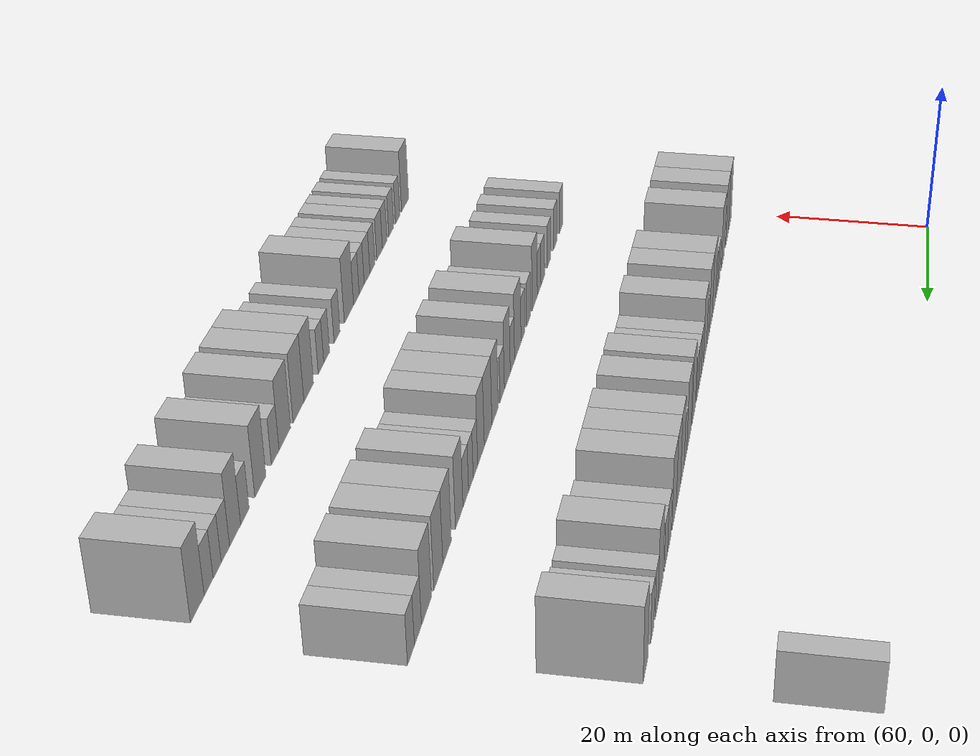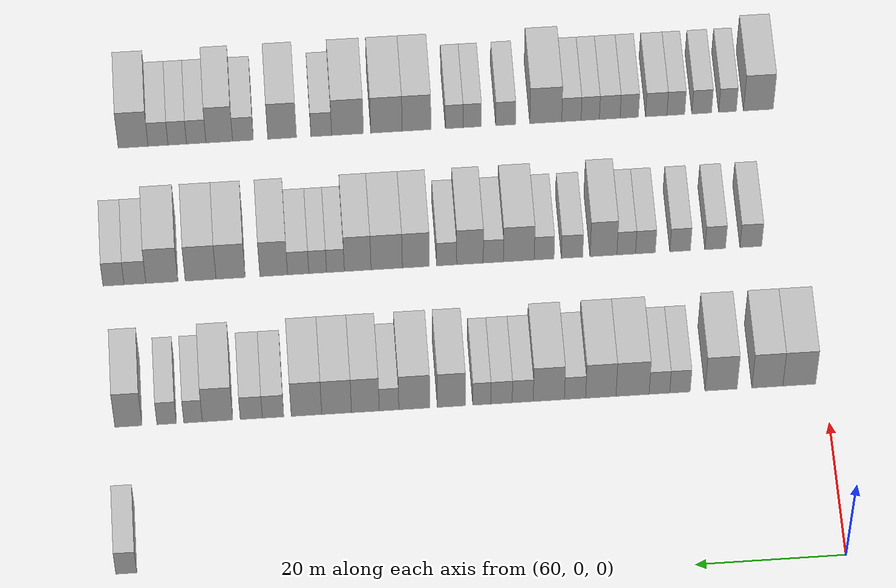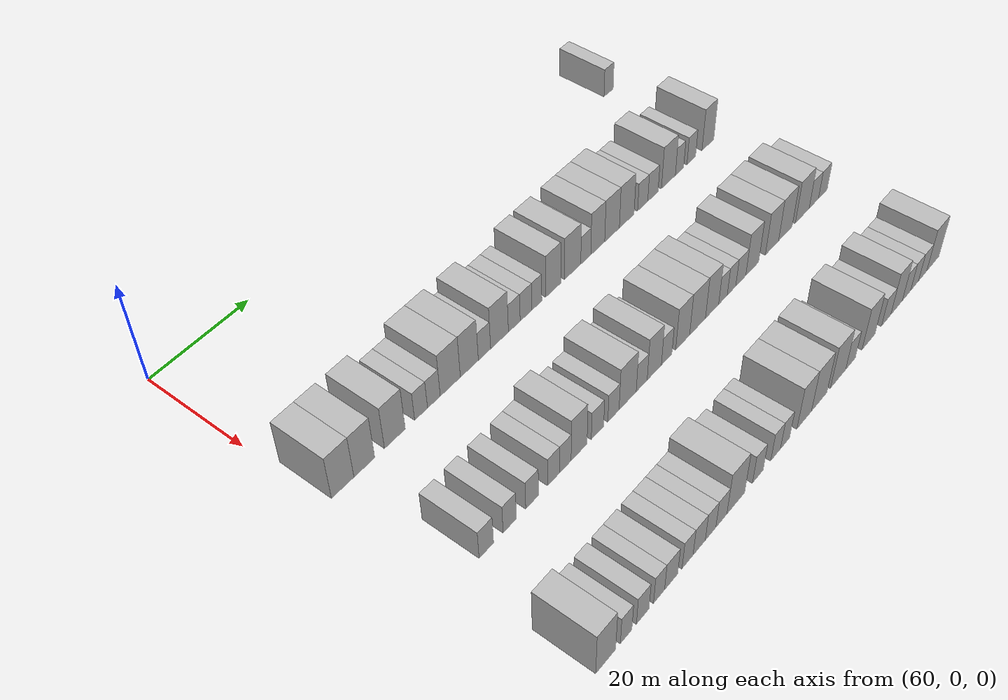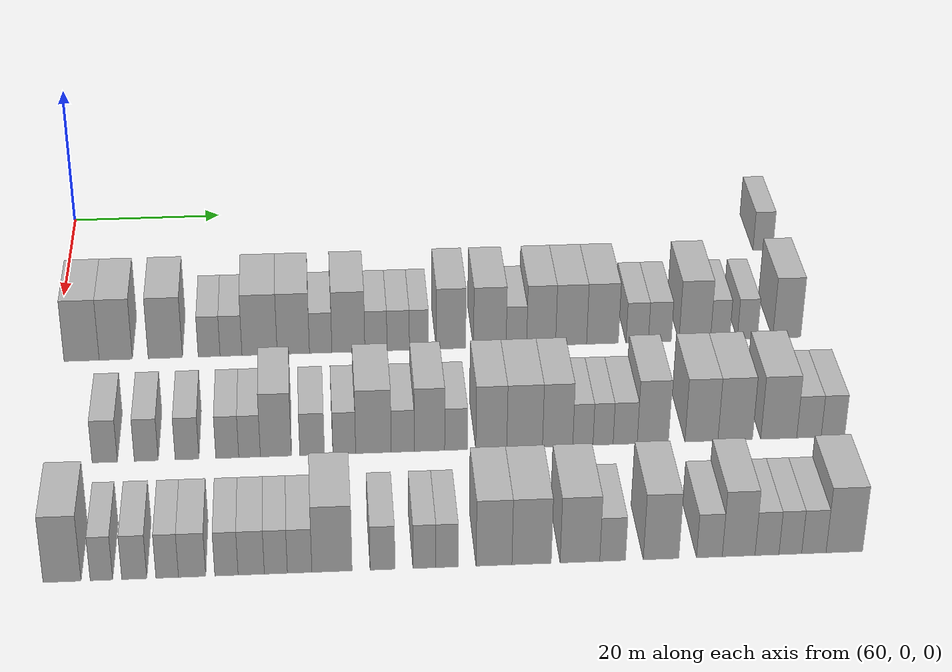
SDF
<sdf version="1.6">
 <world name="default">
  <model name="building_509">
   <static>1</static>
   <pose>69.0000 94.8407 0 0.000000 0.000000 0.000000</pose>
   <link name="link">
    <pose>0 0 3.00 0 0 0</pose>
    <collision name="collision"><geometry><box><size>10.0000 2.7574 6.0000</size></box></geometry></collision>
    <visual name="visual">
     <cast_shadows>0</cast_shadows>
     <geometry><box><size>10.0000 2.7574 6.0000</size></box></geometry>
     <material>
      <script>
       <uri>model://HANNAS_wall/materials/scripts</uri>
       <uri>model://HANNAS_wall/materials/textures</uri>
       <name>vrc/HANNAS_wall</name>
      </script>
     </material>
    </visual>
   </link>
  </model>
  <model name="building_683">
   <static>1</static>
   <pose>91.0000 3.4763 0 0.000000 0.000000 0.000000</pose>
   <link name="link">
    <pose>0 0 4.50 0 0 0</pose>
    <collision name="collision"><geometry><box><size>10.0000 4.4319 9.0000</size></box></geometry></collision>
    <visual name="visual">
     <cast_shadows>0</cast_shadows>
     <geometry><box><size>10.0000 4.4319 9.0000</size></box></geometry>
     <material>
      <script>
       <uri>model://HANNAS_wall/materials/scripts</uri>
       <uri>model://HANNAS_wall/materials/textures</uri>
       <name>vrc/HANNAS_wall</name>
      </script>
     </material>
    </visual>
   </link>
  </model>
  <model name="building_684">
   <static>1</static>
   <pose>91.0000 7.7859 0 0.000000 0.000000 0.000000</pose>
   <link name="link">
    <pose>0 0 4.50 0 0 0</pose>
    <collision name="collision"><geometry><box><size>10.0000 4.1874 9.0000</size></box></geometry></collision>
    <visual name="visual">
     <cast_shadows>0</cast_shadows>
     <geometry><box><size>10.0000 4.1874 9.0000</size></box></geometry>
     <material>
      <script>
       <uri>model://HANNAS_wall/materials/scripts</uri>
       <uri>model://HANNAS_wall/materials/textures</uri>
       <name>vrc/HANNAS_wall</name>
      </script>
     </material>
    </visual>
   </link>
  </model>
  <model name="building_685">
   <static>1</static>
   <pose>91.0000 14.0486 0 0.000000 0.000000 0.000000</pose>
   <link name="link">
    <pose>0 0 4.50 0 0 0</pose>
    <collision name="collision"><geometry><box><size>10.0000 4.3379 9.0000</size></box></geometry></collision>
    <visual name="visual">
     <cast_shadows>0</cast_shadows>
     <geometry><box><size>10.0000 4.3379 9.0000</size></box></geometry>
     <material>
      <script>
       <uri>model://HANNAS_wall/materials/scripts</uri>
       <uri>model://HANNAS_wall/materials/textures</uri>
       <name>vrc/HANNAS_wall</name>
      </script>
     </material>
    </visual>
   </link>
  </model>
  <model name="building_686">
   <static>1</static>
   <pose>91.0000 19.6030 0 0.000000 0.000000 0.000000</pose>
   <link name="link">
    <pose>0 0 3.00 0 0 0</pose>
    <collision name="collision"><geometry><box><size>10.0000 2.7709 6.0000</size></box></geometry></collision>
    <visual name="visual">
     <cast_shadows>0</cast_shadows>
     <geometry><box><size>10.0000 2.7709 6.0000</size></box></geometry>
     <material>
      <script>
       <uri>model://HANNAS_wall/materials/scripts</uri>
       <uri>model://HANNAS_wall/materials/textures</uri>
       <name>vrc/HANNAS_wall</name>
      </script>
     </material>
    </visual>
   </link>
  </model>
  <model name="building_687">
   <static>1</static>
   <pose>91.0000 22.3788 0 0.000000 0.000000 0.000000</pose>
   <link name="link">
    <pose>0 0 3.00 0 0 0</pose>
    <collision name="collision"><geometry><box><size>10.0000 2.7807 6.0000</size></box></geometry></collision>
    <visual name="visual">
     <cast_shadows>0</cast_shadows>
     <geometry><box><size>10.0000 2.7807 6.0000</size></box></geometry>
     <material>
      <script>
       <uri>model://HANNAS_wall/materials/scripts</uri>
       <uri>model://HANNAS_wall/materials/textures</uri>
       <name>vrc/HANNAS_wall</name>
      </script>
     </material>
    </visual>
   </link>
  </model>
  <model name="building_688">
   <static>1</static>
   <pose>91.0000 26.0052 0 0.000000 0.000000 0.000000</pose>
   <link name="link">
    <pose>0 0 4.50 0 0 0</pose>
    <collision name="collision"><geometry><box><size>10.0000 4.4722 9.0000</size></box></geometry></collision>
    <visual name="visual">
     <cast_shadows>0</cast_shadows>
     <geometry><box><size>10.0000 4.4722 9.0000</size></box></geometry>
     <material>
      <script>
       <uri>model://HANNAS_wall/materials/scripts</uri>
       <uri>model://HANNAS_wall/materials/textures</uri>
       <name>vrc/HANNAS_wall</name>
      </script>
     </material>
    </visual>
   </link>
  </model>
  <model name="building_689">
   <static>1</static>
   <pose>91.0000 30.2946 0 0.000000 0.000000 0.000000</pose>
   <link name="link">
    <pose>0 0 4.50 0 0 0</pose>
    <collision name="collision"><geometry><box><size>10.0000 4.1064 9.0000</size></box></geometry></collision>
    <visual name="visual">
     <cast_shadows>0</cast_shadows>
     <geometry><box><size>10.0000 4.1064 9.0000</size></box></geometry>
     <material>
      <script>
       <uri>model://HANNAS_wall/materials/scripts</uri>
       <uri>model://HANNAS_wall/materials/textures</uri>
       <name>vrc/HANNAS_wall</name>
      </script>
     </material>
    </visual>
   </link>
  </model>
  <model name="building_690">
   <static>1</static>
   <pose>91.0000 33.7784 0 0.000000 0.000000 0.000000</pose>
   <link name="link">
    <pose>0 0 3.00 0 0 0</pose>
    <collision name="collision"><geometry><box><size>10.0000 2.8613 6.0000</size></box></geometry></collision>
    <visual name="visual">
     <cast_shadows>0</cast_shadows>
     <geometry><box><size>10.0000 2.8613 6.0000</size></box></geometry>
     <material>
      <script>
       <uri>model://HANNAS_wall/materials/scripts</uri>
       <uri>model://HANNAS_wall/materials/textures</uri>
       <name>vrc/HANNAS_wall</name>
      </script>
     </material>
    </visual>
   </link>
  </model>
  <model name="building_691">
   <static>1</static>
   <pose>91.0000 37.3108 0 0.000000 0.000000 0.000000</pose>
   <link name="link">
    <pose>0 0 4.50 0 0 0</pose>
    <collision name="collision"><geometry><box><size>10.0000 4.2035 9.0000</size></box></geometry></collision>
    <visual name="visual">
     <cast_shadows>0</cast_shadows>
     <geometry><box><size>10.0000 4.2035 9.0000</size></box></geometry>
     <material>
      <script>
       <uri>model://HANNAS_wall/materials/scripts</uri>
       <uri>model://HANNAS_wall/materials/textures</uri>
       <name>vrc/HANNAS_wall</name>
      </script>
     </material>
    </visual>
   </link>
  </model>
  <model name="building_692">
   <static>1</static>
   <pose>91.0000 40.8255 0 0.000000 0.000000 0.000000</pose>
   <link name="link">
    <pose>0 0 3.00 0 0 0</pose>
    <collision name="collision"><geometry><box><size>10.0000 2.8258 6.0000</size></box></geometry></collision>
    <visual name="visual">
     <cast_shadows>0</cast_shadows>
     <geometry><box><size>10.0000 2.8258 6.0000</size></box></geometry>
     <material>
      <script>
       <uri>model://HANNAS_wall/materials/scripts</uri>
       <uri>model://HANNAS_wall/materials/textures</uri>
       <name>vrc/HANNAS_wall</name>
      </script>
     </material>
    </visual>
   </link>
  </model>
  <model name="building_693">
   <static>1</static>
   <pose>91.0000 43.6723 0 0.000000 0.000000 0.000000</pose>
   <link name="link">
    <pose>0 0 3.00 0 0 0</pose>
    <collision name="collision"><geometry><box><size>10.0000 2.8679 6.0000</size></box></geometry></collision>
    <visual name="visual">
     <cast_shadows>0</cast_shadows>
     <geometry><box><size>10.0000 2.8679 6.0000</size></box></geometry>
     <material>
      <script>
       <uri>model://HANNAS_wall/materials/scripts</uri>
       <uri>model://HANNAS_wall/materials/textures</uri>
       <name>vrc/HANNAS_wall</name>
      </script>
     </material>
    </visual>
   </link>
  </model>
  <model name="building_694">
   <static>1</static>
   <pose>91.0000 46.3287 0 0.000000 0.000000 0.000000</pose>
   <link name="link">
    <pose>0 0 3.00 0 0 0</pose>
    <collision name="collision"><geometry><box><size>10.0000 2.4450 6.0000</size></box></geometry></collision>
    <visual name="visual">
     <cast_shadows>0</cast_shadows>
     <geometry><box><size>10.0000 2.4450 6.0000</size></box></geometry>
     <material>
      <script>
       <uri>model://HANNAS_wall/materials/scripts</uri>
       <uri>model://HANNAS_wall/materials/textures</uri>
       <name>vrc/HANNAS_wall</name>
      </script>
     </material>
    </visual>
   </link>
  </model>
  <model name="building_695">
   <static>1</static>
   <pose>91.0000 50.4360 0 0.000000 0.000000 0.000000</pose>
   <link name="link">
    <pose>0 0 4.50 0 0 0</pose>
    <collision name="collision"><geometry><box><size>10.0000 3.7696 9.0000</size></box></geometry></collision>
    <visual name="visual">
     <cast_shadows>0</cast_shadows>
     <geometry><box><size>10.0000 3.7696 9.0000</size></box></geometry>
     <material>
      <script>
       <uri>model://HANNAS_wall/materials/scripts</uri>
       <uri>model://HANNAS_wall/materials/textures</uri>
       <name>vrc/HANNAS_wall</name>
      </script>
     </material>
    </visual>
   </link>
  </model>
  <model name="building_696">
   <static>1</static>
   <pose>91.0000 55.4137 0 0.000000 0.000000 0.000000</pose>
   <link name="link">
    <pose>0 0 4.50 0 0 0</pose>
    <collision name="collision"><geometry><box><size>10.0000 4.1859 9.0000</size></box></geometry></collision>
    <visual name="visual">
     <cast_shadows>0</cast_shadows>
     <geometry><box><size>10.0000 4.1859 9.0000</size></box></geometry>
     <material>
      <script>
       <uri>model://HANNAS_wall/materials/scripts</uri>
       <uri>model://HANNAS_wall/materials/textures</uri>
       <name>vrc/HANNAS_wall</name>
      </script>
     </material>
    </visual>
   </link>
  </model>
  <model name="building_697">
   <static>1</static>
   <pose>91.0000 58.8268 0 0.000000 0.000000 0.000000</pose>
   <link name="link">
    <pose>0 0 3.00 0 0 0</pose>
    <collision name="collision"><geometry><box><size>10.0000 2.6402 6.0000</size></box></geometry></collision>
    <visual name="visual">
     <cast_shadows>0</cast_shadows>
     <geometry><box><size>10.0000 2.6402 6.0000</size></box></geometry>
     <material>
      <script>
       <uri>model://HANNAS_wall/materials/scripts</uri>
       <uri>model://HANNAS_wall/materials/textures</uri>
       <name>vrc/HANNAS_wall</name>
      </script>
     </material>
    </visual>
   </link>
  </model>
  <model name="building_698">
   <static>1</static>
   <pose>91.0000 62.0101 0 0.000000 0.000000 0.000000</pose>
   <link name="link">
    <pose>0 0 4.50 0 0 0</pose>
    <collision name="collision"><geometry><box><size>10.0000 3.7266 9.0000</size></box></geometry></collision>
    <visual name="visual">
     <cast_shadows>0</cast_shadows>
     <geometry><box><size>10.0000 3.7266 9.0000</size></box></geometry>
     <material>
      <script>
       <uri>model://HANNAS_wall/materials/scripts</uri>
       <uri>model://HANNAS_wall/materials/textures</uri>
       <name>vrc/HANNAS_wall</name>
      </script>
     </material>
    </visual>
   </link>
  </model>
  <model name="building_699">
   <static>1</static>
   <pose>91.0000 65.8747 0 0.000000 0.000000 0.000000</pose>
   <link name="link">
    <pose>0 0 4.50 0 0 0</pose>
    <collision name="collision"><geometry><box><size>10.0000 4.0026 9.0000</size></box></geometry></collision>
    <visual name="visual">
     <cast_shadows>0</cast_shadows>
     <geometry><box><size>10.0000 4.0026 9.0000</size></box></geometry>
     <material>
      <script>
       <uri>model://HANNAS_wall/materials/scripts</uri>
       <uri>model://HANNAS_wall/materials/textures</uri>
       <name>vrc/HANNAS_wall</name>
      </script>
     </material>
    </visual>
   </link>
  </model>
  <model name="building_700">
   <static>1</static>
   <pose>91.0000 69.9228 0 0.000000 0.000000 0.000000</pose>
   <link name="link">
    <pose>0 0 4.50 0 0 0</pose>
    <collision name="collision"><geometry><box><size>10.0000 4.0937 9.0000</size></box></geometry></collision>
    <visual name="visual">
     <cast_shadows>0</cast_shadows>
     <geometry><box><size>10.0000 4.0937 9.0000</size></box></geometry>
     <material>
      <script>
       <uri>model://HANNAS_wall/materials/scripts</uri>
       <uri>model://HANNAS_wall/materials/textures</uri>
       <name>vrc/HANNAS_wall</name>
      </script>
     </material>
    </visual>
   </link>
  </model>
  <model name="building_701">
   <static>1</static>
   <pose>91.0000 74.4106 0 0.000000 0.000000 0.000000</pose>
   <link name="link">
    <pose>0 0 3.00 0 0 0</pose>
    <collision name="collision"><geometry><box><size>10.0000 2.8820 6.0000</size></box></geometry></collision>
    <visual name="visual">
     <cast_shadows>0</cast_shadows>
     <geometry><box><size>10.0000 2.8820 6.0000</size></box></geometry>
     <material>
      <script>
       <uri>model://HANNAS_wall/materials/scripts</uri>
       <uri>model://HANNAS_wall/materials/textures</uri>
       <name>vrc/HANNAS_wall</name>
      </script>
     </material>
    </visual>
   </link>
  </model>
  <model name="building_702">
   <static>1</static>
   <pose>91.0000 77.3339 0 0.000000 0.000000 0.000000</pose>
   <link name="link">
    <pose>0 0 3.00 0 0 0</pose>
    <collision name="collision"><geometry><box><size>10.0000 2.9646 6.0000</size></box></geometry></collision>
    <visual name="visual">
     <cast_shadows>0</cast_shadows>
     <geometry><box><size>10.0000 2.9646 6.0000</size></box></geometry>
     <material>
      <script>
       <uri>model://HANNAS_wall/materials/scripts</uri>
       <uri>model://HANNAS_wall/materials/textures</uri>
       <name>vrc/HANNAS_wall</name>
      </script>
     </material>
    </visual>
   </link>
  </model>
  <model name="building_703">
   <static>1</static>
   <pose>91.0000 81.8601 0 0.000000 0.000000 0.000000</pose>
   <link name="link">
    <pose>0 0 4.50 0 0 0</pose>
    <collision name="collision"><geometry><box><size>10.0000 4.0879 9.0000</size></box></geometry></collision>
    <visual name="visual">
     <cast_shadows>0</cast_shadows>
     <geometry><box><size>10.0000 4.0879 9.0000</size></box></geometry>
     <material>
      <script>
       <uri>model://HANNAS_wall/materials/scripts</uri>
       <uri>model://HANNAS_wall/materials/textures</uri>
       <name>vrc/HANNAS_wall</name>
      </script>
     </material>
    </visual>
   </link>
  </model>
  <model name="building_704">
   <static>1</static>
   <pose>91.0000 85.1435 0 0.000000 0.000000 0.000000</pose>
   <link name="link">
    <pose>0 0 3.00 0 0 0</pose>
    <collision name="collision"><geometry><box><size>10.0000 2.4789 6.0000</size></box></geometry></collision>
    <visual name="visual">
     <cast_shadows>0</cast_shadows>
     <geometry><box><size>10.0000 2.4789 6.0000</size></box></geometry>
     <material>
      <script>
       <uri>model://HANNAS_wall/materials/scripts</uri>
       <uri>model://HANNAS_wall/materials/textures</uri>
       <name>vrc/HANNAS_wall</name>
      </script>
     </material>
    </visual>
   </link>
  </model>
  <model name="building_705">
   <static>1</static>
   <pose>91.0000 88.6857 0 0.000000 0.000000 0.000000</pose>
   <link name="link">
    <pose>0 0 3.00 0 0 0</pose>
    <collision name="collision"><geometry><box><size>10.0000 2.6055 6.0000</size></box></geometry></collision>
    <visual name="visual">
     <cast_shadows>0</cast_shadows>
     <geometry><box><size>10.0000 2.6055 6.0000</size></box></geometry>
     <material>
      <script>
       <uri>model://HANNAS_wall/materials/scripts</uri>
       <uri>model://HANNAS_wall/materials/textures</uri>
       <name>vrc/HANNAS_wall</name>
      </script>
     </material>
    </visual>
   </link>
  </model>
  <model name="building_706">
   <static>1</static>
   <pose>91.0000 93.8079 0 0.000000 0.000000 0.000000</pose>
   <link name="link">
    <pose>0 0 4.50 0 0 0</pose>
    <collision name="collision"><geometry><box><size>10.0000 3.6389 9.0000</size></box></geometry></collision>
    <visual name="visual">
     <cast_shadows>0</cast_shadows>
     <geometry><box><size>10.0000 3.6389 9.0000</size></box></geometry>
     <material>
      <script>
       <uri>model://HANNAS_wall/materials/scripts</uri>
       <uri>model://HANNAS_wall/materials/textures</uri>
       <name>vrc/HANNAS_wall</name>
      </script>
     </material>
    </visual>
   </link>
  </model>
  <model name="building_888">
   <static>1</static>
   <pose>113.0000 7.8021 0 0.000000 0.000000 0.000000</pose>
   <link name="link">
    <pose>0 0 3.00 0 0 0</pose>
    <collision name="collision"><geometry><box><size>10.0000 2.9793 6.0000</size></box></geometry></collision>
    <visual name="visual">
     <cast_shadows>0</cast_shadows>
     <geometry><box><size>10.0000 2.9793 6.0000</size></box></geometry>
     <material>
      <script>
       <uri>model://HANNAS_wall/materials/scripts</uri>
       <uri>model://HANNAS_wall/materials/textures</uri>
       <name>vrc/HANNAS_wall</name>
      </script>
     </material>
    </visual>
   </link>
  </model>
  <model name="building_889">
   <static>1</static>
   <pose>113.0000 12.7052 0 0.000000 0.000000 0.000000</pose>
   <link name="link">
    <pose>0 0 3.00 0 0 0</pose>
    <collision name="collision"><geometry><box><size>10.0000 2.8270 6.0000</size></box></geometry></collision>
    <visual name="visual">
     <cast_shadows>0</cast_shadows>
     <geometry><box><size>10.0000 2.8270 6.0000</size></box></geometry>
     <material>
      <script>
       <uri>model://HANNAS_wall/materials/scripts</uri>
       <uri>model://HANNAS_wall/materials/textures</uri>
       <name>vrc/HANNAS_wall</name>
      </script>
     </material>
    </visual>
   </link>
  </model>
  <model name="building_890">
   <static>1</static>
   <pose>113.0000 17.5270 0 0.000000 0.000000 0.000000</pose>
   <link name="link">
    <pose>0 0 3.00 0 0 0</pose>
    <collision name="collision"><geometry><box><size>10.0000 2.8166 6.0000</size></box></geometry></collision>
    <visual name="visual">
     <cast_shadows>0</cast_shadows>
     <geometry><box><size>10.0000 2.8166 6.0000</size></box></geometry>
     <material>
      <script>
       <uri>model://HANNAS_wall/materials/scripts</uri>
       <uri>model://HANNAS_wall/materials/textures</uri>
       <name>vrc/HANNAS_wall</name>
      </script>
     </material>
    </visual>
   </link>
  </model>
  <model name="building_891">
   <static>1</static>
   <pose>113.0000 22.2931 0 0.000000 0.000000 0.000000</pose>
   <link name="link">
    <pose>0 0 3.00 0 0 0</pose>
    <collision name="collision"><geometry><box><size>10.0000 2.7155 6.0000</size></box></geometry></collision>
    <visual name="visual">
     <cast_shadows>0</cast_shadows>
     <geometry><box><size>10.0000 2.7155 6.0000</size></box></geometry>
     <material>
      <script>
       <uri>model://HANNAS_wall/materials/scripts</uri>
       <uri>model://HANNAS_wall/materials/textures</uri>
       <name>vrc/HANNAS_wall</name>
      </script>
     </material>
    </visual>
   </link>
  </model>
  <model name="building_892">
   <static>1</static>
   <pose>113.0000 24.9340 0 0.000000 0.000000 0.000000</pose>
   <link name="link">
    <pose>0 0 3.00 0 0 0</pose>
    <collision name="collision"><geometry><box><size>10.0000 2.5665 6.0000</size></box></geometry></collision>
    <visual name="visual">
     <cast_shadows>0</cast_shadows>
     <geometry><box><size>10.0000 2.5665 6.0000</size></box></geometry>
     <material>
      <script>
       <uri>model://HANNAS_wall/materials/scripts</uri>
       <uri>model://HANNAS_wall/materials/textures</uri>
       <name>vrc/HANNAS_wall</name>
      </script>
     </material>
    </visual>
   </link>
  </model>
  <model name="building_893">
   <static>1</static>
   <pose>113.0000 28.0636 0 0.000000 0.000000 0.000000</pose>
   <link name="link">
    <pose>0 0 4.50 0 0 0</pose>
    <collision name="collision"><geometry><box><size>10.0000 3.6927 9.0000</size></box></geometry></collision>
    <visual name="visual">
     <cast_shadows>0</cast_shadows>
     <geometry><box><size>10.0000 3.6927 9.0000</size></box></geometry>
     <material>
      <script>
       <uri>model://HANNAS_wall/materials/scripts</uri>
       <uri>model://HANNAS_wall/materials/textures</uri>
       <name>vrc/HANNAS_wall</name>
      </script>
     </material>
    </visual>
   </link>
  </model>
  <model name="building_894">
   <static>1</static>
   <pose>113.0000 32.3778 0 0.000000 0.000000 0.000000</pose>
   <link name="link">
    <pose>0 0 3.00 0 0 0</pose>
    <collision name="collision"><geometry><box><size>10.0000 2.9357 6.0000</size></box></geometry></collision>
    <visual name="visual">
     <cast_shadows>0</cast_shadows>
     <geometry><box><size>10.0000 2.9357 6.0000</size></box></geometry>
     <material>
      <script>
       <uri>model://HANNAS_wall/materials/scripts</uri>
       <uri>model://HANNAS_wall/materials/textures</uri>
       <name>vrc/HANNAS_wall</name>
      </script>
     </material>
    </visual>
   </link>
  </model>
  <model name="building_895">
   <static>1</static>
   <pose>113.0000 36.2002 0 0.000000 0.000000 0.000000</pose>
   <link name="link">
    <pose>0 0 3.00 0 0 0</pose>
    <collision name="collision"><geometry><box><size>10.0000 2.7089 6.0000</size></box></geometry></collision>
    <visual name="visual">
     <cast_shadows>0</cast_shadows>
     <geometry><box><size>10.0000 2.7089 6.0000</size></box></geometry>
     <material>
      <script>
       <uri>model://HANNAS_wall/materials/scripts</uri>
       <uri>model://HANNAS_wall/materials/textures</uri>
       <name>vrc/HANNAS_wall</name>
      </script>
     </material>
    </visual>
   </link>
  </model>
  <model name="building_896">
   <static>1</static>
   <pose>113.0000 39.6737 0 0.000000 0.000000 0.000000</pose>
   <link name="link">
    <pose>0 0 4.50 0 0 0</pose>
    <collision name="collision"><geometry><box><size>10.0000 4.2382 9.0000</size></box></geometry></collision>
    <visual name="visual">
     <cast_shadows>0</cast_shadows>
     <geometry><box><size>10.0000 4.2382 9.0000</size></box></geometry>
     <material>
      <script>
       <uri>model://HANNAS_wall/materials/scripts</uri>
       <uri>model://HANNAS_wall/materials/textures</uri>
       <name>vrc/HANNAS_wall</name>
      </script>
     </material>
    </visual>
   </link>
  </model>
  <model name="building_897">
   <static>1</static>
   <pose>113.0000 43.1726 0 0.000000 0.000000 0.000000</pose>
   <link name="link">
    <pose>0 0 3.00 0 0 0</pose>
    <collision name="collision"><geometry><box><size>10.0000 2.7597 6.0000</size></box></geometry></collision>
    <visual name="visual">
     <cast_shadows>0</cast_shadows>
     <geometry><box><size>10.0000 2.7597 6.0000</size></box></geometry>
     <material>
      <script>
       <uri>model://HANNAS_wall/materials/scripts</uri>
       <uri>model://HANNAS_wall/materials/textures</uri>
       <name>vrc/HANNAS_wall</name>
      </script>
     </material>
    </visual>
   </link>
  </model>
  <model name="building_898">
   <static>1</static>
   <pose>113.0000 46.3700 0 0.000000 0.000000 0.000000</pose>
   <link name="link">
    <pose>0 0 4.50 0 0 0</pose>
    <collision name="collision"><geometry><box><size>10.0000 3.6351 9.0000</size></box></geometry></collision>
    <visual name="visual">
     <cast_shadows>0</cast_shadows>
     <geometry><box><size>10.0000 3.6351 9.0000</size></box></geometry>
     <material>
      <script>
       <uri>model://HANNAS_wall/materials/scripts</uri>
       <uri>model://HANNAS_wall/materials/textures</uri>
       <name>vrc/HANNAS_wall</name>
      </script>
     </material>
    </visual>
   </link>
  </model>
  <model name="building_899">
   <static>1</static>
   <pose>113.0000 49.5577 0 0.000000 0.000000 0.000000</pose>
   <link name="link">
    <pose>0 0 3.00 0 0 0</pose>
    <collision name="collision"><geometry><box><size>10.0000 2.7403 6.0000</size></box></geometry></collision>
    <visual name="visual">
     <cast_shadows>0</cast_shadows>
     <geometry><box><size>10.0000 2.7403 6.0000</size></box></geometry>
     <material>
      <script>
       <uri>model://HANNAS_wall/materials/scripts</uri>
       <uri>model://HANNAS_wall/materials/textures</uri>
       <name>vrc/HANNAS_wall</name>
      </script>
     </material>
    </visual>
   </link>
  </model>
  <model name="building_900">
   <static>1</static>
   <pose>113.0000 53.7817 0 0.000000 0.000000 0.000000</pose>
   <link name="link">
    <pose>0 0 4.50 0 0 0</pose>
    <collision name="collision"><geometry><box><size>10.0000 3.7078 9.0000</size></box></geometry></collision>
    <visual name="visual">
     <cast_shadows>0</cast_shadows>
     <geometry><box><size>10.0000 3.7078 9.0000</size></box></geometry>
     <material>
      <script>
       <uri>model://HANNAS_wall/materials/scripts</uri>
       <uri>model://HANNAS_wall/materials/textures</uri>
       <name>vrc/HANNAS_wall</name>
      </script>
     </material>
    </visual>
   </link>
  </model>
  <model name="building_901">
   <static>1</static>
   <pose>113.0000 57.7824 0 0.000000 0.000000 0.000000</pose>
   <link name="link">
    <pose>0 0 4.50 0 0 0</pose>
    <collision name="collision"><geometry><box><size>10.0000 4.2935 9.0000</size></box></geometry></collision>
    <visual name="visual">
     <cast_shadows>0</cast_shadows>
     <geometry><box><size>10.0000 4.2935 9.0000</size></box></geometry>
     <material>
      <script>
       <uri>model://HANNAS_wall/materials/scripts</uri>
       <uri>model://HANNAS_wall/materials/textures</uri>
       <name>vrc/HANNAS_wall</name>
      </script>
     </material>
    </visual>
   </link>
  </model>
  <model name="building_902">
   <static>1</static>
   <pose>113.0000 61.7540 0 0.000000 0.000000 0.000000</pose>
   <link name="link">
    <pose>0 0 4.50 0 0 0</pose>
    <collision name="collision"><geometry><box><size>10.0000 3.6498 9.0000</size></box></geometry></collision>
    <visual name="visual">
     <cast_shadows>0</cast_shadows>
     <geometry><box><size>10.0000 3.6498 9.0000</size></box></geometry>
     <material>
      <script>
       <uri>model://HANNAS_wall/materials/scripts</uri>
       <uri>model://HANNAS_wall/materials/textures</uri>
       <name>vrc/HANNAS_wall</name>
      </script>
     </material>
    </visual>
   </link>
  </model>
  <model name="building_903">
   <static>1</static>
   <pose>113.0000 64.7961 0 0.000000 0.000000 0.000000</pose>
   <link name="link">
    <pose>0 0 3.00 0 0 0</pose>
    <collision name="collision"><geometry><box><size>10.0000 2.4343 6.0000</size></box></geometry></collision>
    <visual name="visual">
     <cast_shadows>0</cast_shadows>
     <geometry><box><size>10.0000 2.4343 6.0000</size></box></geometry>
     <material>
      <script>
       <uri>model://HANNAS_wall/materials/scripts</uri>
       <uri>model://HANNAS_wall/materials/textures</uri>
       <name>vrc/HANNAS_wall</name>
      </script>
     </material>
    </visual>
   </link>
  </model>
  <model name="building_904">
   <static>1</static>
   <pose>113.0000 67.2259 0 0.000000 0.000000 0.000000</pose>
   <link name="link">
    <pose>0 0 3.00 0 0 0</pose>
    <collision name="collision"><geometry><box><size>10.0000 2.4254 6.0000</size></box></geometry></collision>
    <visual name="visual">
     <cast_shadows>0</cast_shadows>
     <geometry><box><size>10.0000 2.4254 6.0000</size></box></geometry>
     <material>
      <script>
       <uri>model://HANNAS_wall/materials/scripts</uri>
       <uri>model://HANNAS_wall/materials/textures</uri>
       <name>vrc/HANNAS_wall</name>
      </script>
     </material>
    </visual>
   </link>
  </model>
  <model name="building_905">
   <static>1</static>
   <pose>113.0000 69.8925 0 0.000000 0.000000 0.000000</pose>
   <link name="link">
    <pose>0 0 3.00 0 0 0</pose>
    <collision name="collision"><geometry><box><size>10.0000 2.9077 6.0000</size></box></geometry></collision>
    <visual name="visual">
     <cast_shadows>0</cast_shadows>
     <geometry><box><size>10.0000 2.9077 6.0000</size></box></geometry>
     <material>
      <script>
       <uri>model://HANNAS_wall/materials/scripts</uri>
       <uri>model://HANNAS_wall/materials/textures</uri>
       <name>vrc/HANNAS_wall</name>
      </script>
     </material>
    </visual>
   </link>
  </model>
  <model name="building_906">
   <static>1</static>
   <pose>113.0000 73.2356 0 0.000000 0.000000 0.000000</pose>
   <link name="link">
    <pose>0 0 4.50 0 0 0</pose>
    <collision name="collision"><geometry><box><size>10.0000 3.7785 9.0000</size></box></geometry></collision>
    <visual name="visual">
     <cast_shadows>0</cast_shadows>
     <geometry><box><size>10.0000 3.7785 9.0000</size></box></geometry>
     <material>
      <script>
       <uri>model://HANNAS_wall/materials/scripts</uri>
       <uri>model://HANNAS_wall/materials/textures</uri>
       <name>vrc/HANNAS_wall</name>
      </script>
     </material>
    </visual>
   </link>
  </model>
  <model name="building_907">
   <static>1</static>
   <pose>113.0000 79.1216 0 0.000000 0.000000 0.000000</pose>
   <link name="link">
    <pose>0 0 4.50 0 0 0</pose>
    <collision name="collision"><geometry><box><size>10.0000 3.9934 9.0000</size></box></geometry></collision>
    <visual name="visual">
     <cast_shadows>0</cast_shadows>
     <geometry><box><size>10.0000 3.9934 9.0000</size></box></geometry>
     <material>
      <script>
       <uri>model://HANNAS_wall/materials/scripts</uri>
       <uri>model://HANNAS_wall/materials/textures</uri>
       <name>vrc/HANNAS_wall</name>
      </script>
     </material>
    </visual>
   </link>
  </model>
  <model name="building_908">
   <static>1</static>
   <pose>113.0000 83.2175 0 0.000000 0.000000 0.000000</pose>
   <link name="link">
    <pose>0 0 4.50 0 0 0</pose>
    <collision name="collision"><geometry><box><size>10.0000 4.1983 9.0000</size></box></geometry></collision>
    <visual name="visual">
     <cast_shadows>0</cast_shadows>
     <geometry><box><size>10.0000 4.1983 9.0000</size></box></geometry>
     <material>
      <script>
       <uri>model://HANNAS_wall/materials/scripts</uri>
       <uri>model://HANNAS_wall/materials/textures</uri>
       <name>vrc/HANNAS_wall</name>
      </script>
     </material>
    </visual>
   </link>
  </model>
  <model name="building_909">
   <static>1</static>
   <pose>113.0000 88.5026 0 0.000000 0.000000 0.000000</pose>
   <link name="link">
    <pose>0 0 4.50 0 0 0</pose>
    <collision name="collision"><geometry><box><size>10.0000 4.3719 9.0000</size></box></geometry></collision>
    <visual name="visual">
     <cast_shadows>0</cast_shadows>
     <geometry><box><size>10.0000 4.3719 9.0000</size></box></geometry>
     <material>
      <script>
       <uri>model://HANNAS_wall/materials/scripts</uri>
       <uri>model://HANNAS_wall/materials/textures</uri>
       <name>vrc/HANNAS_wall</name>
      </script>
     </material>
    </visual>
   </link>
  </model>
  <model name="building_910">
   <static>1</static>
   <pose>113.0000 92.1768 0 0.000000 0.000000 0.000000</pose>
   <link name="link">
    <pose>0 0 3.00 0 0 0</pose>
    <collision name="collision"><geometry><box><size>10.0000 2.9765 6.0000</size></box></geometry></collision>
    <visual name="visual">
     <cast_shadows>0</cast_shadows>
     <geometry><box><size>10.0000 2.9765 6.0000</size></box></geometry>
     <material>
      <script>
       <uri>model://HANNAS_wall/materials/scripts</uri>
       <uri>model://HANNAS_wall/materials/textures</uri>
       <name>vrc/HANNAS_wall</name>
      </script>
     </material>
    </visual>
   </link>
  </model>
  <model name="building_911">
   <static>1</static>
   <pose>113.0000 95.1010 0 0.000000 0.000000 0.000000</pose>
   <link name="link">
    <pose>0 0 3.00 0 0 0</pose>
    <collision name="collision"><geometry><box><size>10.0000 2.8721 6.0000</size></box></geometry></collision>
    <visual name="visual">
     <cast_shadows>0</cast_shadows>
     <geometry><box><size>10.0000 2.8721 6.0000</size></box></geometry>
     <material>
      <script>
       <uri>model://HANNAS_wall/materials/scripts</uri>
       <uri>model://HANNAS_wall/materials/textures</uri>
       <name>vrc/HANNAS_wall</name>
      </script>
     </material>
    </visual>
   </link>
  </model>
  <model name="building_1076">
   <static>1</static>
   <pose>135.0000 4.5302 0 0.000000 0.000000 0.000000</pose>
   <link name="link">
    <pose>0 0 4.50 0 0 0</pose>
    <collision name="collision"><geometry><box><size>10.0000 4.1595 9.0000</size></box></geometry></collision>
    <visual name="visual">
     <cast_shadows>0</cast_shadows>
     <geometry><box><size>10.0000 4.1595 9.0000</size></box></geometry>
     <material>
      <script>
       <uri>model://HANNAS_wall/materials/scripts</uri>
       <uri>model://HANNAS_wall/materials/textures</uri>
       <name>vrc/HANNAS_wall</name>
      </script>
     </material>
    </visual>
   </link>
  </model>
  <model name="building_1077">
   <static>1</static>
   <pose>135.0000 8.8443 0 0.000000 0.000000 0.000000</pose>
   <link name="link">
    <pose>0 0 3.00 0 0 0</pose>
    <collision name="collision"><geometry><box><size>10.0000 2.4687 6.0000</size></box></geometry></collision>
    <visual name="visual">
     <cast_shadows>0</cast_shadows>
     <geometry><box><size>10.0000 2.4687 6.0000</size></box></geometry>
     <material>
      <script>
       <uri>model://HANNAS_wall/materials/scripts</uri>
       <uri>model://HANNAS_wall/materials/textures</uri>
       <name>vrc/HANNAS_wall</name>
      </script>
     </material>
    </visual>
   </link>
  </model>
  <model name="building_1078">
   <static>1</static>
   <pose>135.0000 12.4537 0 0.000000 0.000000 0.000000</pose>
   <link name="link">
    <pose>0 0 3.00 0 0 0</pose>
    <collision name="collision"><geometry><box><size>10.0000 2.7501 6.0000</size></box></geometry></collision>
    <visual name="visual">
     <cast_shadows>0</cast_shadows>
     <geometry><box><size>10.0000 2.7501 6.0000</size></box></geometry>
     <material>
      <script>
       <uri>model://HANNAS_wall/materials/scripts</uri>
       <uri>model://HANNAS_wall/materials/textures</uri>
       <name>vrc/HANNAS_wall</name>
      </script>
     </material>
    </visual>
   </link>
  </model>
  <model name="building_1079">
   <static>1</static>
   <pose>135.0000 16.0682 0 0.000000 0.000000 0.000000</pose>
   <link name="link">
    <pose>0 0 3.00 0 0 0</pose>
    <collision name="collision"><geometry><box><size>10.0000 2.4788 6.0000</size></box></geometry></collision>
    <visual name="visual">
     <cast_shadows>0</cast_shadows>
     <geometry><box><size>10.0000 2.4788 6.0000</size></box></geometry>
     <material>
      <script>
       <uri>model://HANNAS_wall/materials/scripts</uri>
       <uri>model://HANNAS_wall/materials/textures</uri>
       <name>vrc/HANNAS_wall</name>
      </script>
     </material>
    </visual>
   </link>
  </model>
  <model name="building_1080">
   <static>1</static>
   <pose>135.0000 18.8057 0 0.000000 0.000000 0.000000</pose>
   <link name="link">
    <pose>0 0 3.00 0 0 0</pose>
    <collision name="collision"><geometry><box><size>10.0000 2.9961 6.0000</size></box></geometry></collision>
    <visual name="visual">
     <cast_shadows>0</cast_shadows>
     <geometry><box><size>10.0000 2.9961 6.0000</size></box></geometry>
     <material>
      <script>
       <uri>model://HANNAS_wall/materials/scripts</uri>
       <uri>model://HANNAS_wall/materials/textures</uri>
       <name>vrc/HANNAS_wall</name>
      </script>
     </material>
    </visual>
   </link>
  </model>
  <model name="building_1081">
   <static>1</static>
   <pose>135.0000 22.5877 0 0.000000 0.000000 0.000000</pose>
   <link name="link">
    <pose>0 0 3.00 0 0 0</pose>
    <collision name="collision"><geometry><box><size>10.0000 2.5678 6.0000</size></box></geometry></collision>
    <visual name="visual">
     <cast_shadows>0</cast_shadows>
     <geometry><box><size>10.0000 2.5678 6.0000</size></box></geometry>
     <material>
      <script>
       <uri>model://HANNAS_wall/materials/scripts</uri>
       <uri>model://HANNAS_wall/materials/textures</uri>
       <name>vrc/HANNAS_wall</name>
      </script>
     </material>
    </visual>
   </link>
  </model>
  <model name="building_1082">
   <static>1</static>
   <pose>135.0000 25.3209 0 0.000000 0.000000 0.000000</pose>
   <link name="link">
    <pose>0 0 3.00 0 0 0</pose>
    <collision name="collision"><geometry><box><size>10.0000 2.8986 6.0000</size></box></geometry></collision>
    <visual name="visual">
     <cast_shadows>0</cast_shadows>
     <geometry><box><size>10.0000 2.8986 6.0000</size></box></geometry>
     <material>
      <script>
       <uri>model://HANNAS_wall/materials/scripts</uri>
       <uri>model://HANNAS_wall/materials/textures</uri>
       <name>vrc/HANNAS_wall</name>
      </script>
     </material>
    </visual>
   </link>
  </model>
  <model name="building_1083">
   <static>1</static>
   <pose>135.0000 28.0424 0 0.000000 0.000000 0.000000</pose>
   <link name="link">
    <pose>0 0 3.00 0 0 0</pose>
    <collision name="collision"><geometry><box><size>10.0000 2.5445 6.0000</size></box></geometry></collision>
    <visual name="visual">
     <cast_shadows>0</cast_shadows>
     <geometry><box><size>10.0000 2.5445 6.0000</size></box></geometry>
     <material>
      <script>
       <uri>model://HANNAS_wall/materials/scripts</uri>
       <uri>model://HANNAS_wall/materials/textures</uri>
       <name>vrc/HANNAS_wall</name>
      </script>
     </material>
    </visual>
   </link>
  </model>
  <model name="building_1084">
   <static>1</static>
   <pose>135.0000 30.6707 0 0.000000 0.000000 0.000000</pose>
   <link name="link">
    <pose>0 0 3.00 0 0 0</pose>
    <collision name="collision"><geometry><box><size>10.0000 2.7120 6.0000</size></box></geometry></collision>
    <visual name="visual">
     <cast_shadows>0</cast_shadows>
     <geometry><box><size>10.0000 2.7120 6.0000</size></box></geometry>
     <material>
      <script>
       <uri>model://HANNAS_wall/materials/scripts</uri>
       <uri>model://HANNAS_wall/materials/textures</uri>
       <name>vrc/HANNAS_wall</name>
      </script>
     </material>
    </visual>
   </link>
  </model>
  <model name="building_1085">
   <static>1</static>
   <pose>135.0000 34.2503 0 0.000000 0.000000 0.000000</pose>
   <link name="link">
    <pose>0 0 4.50 0 0 0</pose>
    <collision name="collision"><geometry><box><size>10.0000 4.4473 9.0000</size></box></geometry></collision>
    <visual name="visual">
     <cast_shadows>0</cast_shadows>
     <geometry><box><size>10.0000 4.4473 9.0000</size></box></geometry>
     <material>
      <script>
       <uri>model://HANNAS_wall/materials/scripts</uri>
       <uri>model://HANNAS_wall/materials/textures</uri>
       <name>vrc/HANNAS_wall</name>
      </script>
     </material>
    </visual>
   </link>
  </model>
  <model name="building_1086">
   <static>1</static>
   <pose>135.0000 39.8517 0 0.000000 0.000000 0.000000</pose>
   <link name="link">
    <pose>0 0 3.00 0 0 0</pose>
    <collision name="collision"><geometry><box><size>10.0000 2.7554 6.0000</size></box></geometry></collision>
    <visual name="visual">
     <cast_shadows>0</cast_shadows>
     <geometry><box><size>10.0000 2.7554 6.0000</size></box></geometry>
     <material>
      <script>
       <uri>model://HANNAS_wall/materials/scripts</uri>
       <uri>model://HANNAS_wall/materials/textures</uri>
       <name>vrc/HANNAS_wall</name>
      </script>
     </material>
    </visual>
   </link>
  </model>
  <model name="building_1087">
   <static>1</static>
   <pose>135.0000 44.5064 0 0.000000 0.000000 0.000000</pose>
   <link name="link">
    <pose>0 0 3.00 0 0 0</pose>
    <collision name="collision"><geometry><box><size>10.0000 2.5542 6.0000</size></box></geometry></collision>
    <visual name="visual">
     <cast_shadows>0</cast_shadows>
     <geometry><box><size>10.0000 2.5542 6.0000</size></box></geometry>
     <material>
      <script>
       <uri>model://HANNAS_wall/materials/scripts</uri>
       <uri>model://HANNAS_wall/materials/textures</uri>
       <name>vrc/HANNAS_wall</name>
      </script>
     </material>
    </visual>
   </link>
  </model>
  <model name="building_1088">
   <static>1</static>
   <pose>135.0000 47.0196 0 0.000000 0.000000 0.000000</pose>
   <link name="link">
    <pose>0 0 3.00 0 0 0</pose>
    <collision name="collision"><geometry><box><size>10.0000 2.4721 6.0000</size></box></geometry></collision>
    <visual name="visual">
     <cast_shadows>0</cast_shadows>
     <geometry><box><size>10.0000 2.4721 6.0000</size></box></geometry>
     <material>
      <script>
       <uri>model://HANNAS_wall/materials/scripts</uri>
       <uri>model://HANNAS_wall/materials/textures</uri>
       <name>vrc/HANNAS_wall</name>
      </script>
     </material>
    </visual>
   </link>
  </model>
  <model name="building_1089">
   <static>1</static>
   <pose>135.0000 52.2580 0 0.000000 0.000000 0.000000</pose>
   <link name="link">
    <pose>0 0 4.50 0 0 0</pose>
    <collision name="collision"><geometry><box><size>10.0000 4.0048 9.0000</size></box></geometry></collision>
    <visual name="visual">
     <cast_shadows>0</cast_shadows>
     <geometry><box><size>10.0000 4.0048 9.0000</size></box></geometry>
     <material>
      <script>
       <uri>model://HANNAS_wall/materials/scripts</uri>
       <uri>model://HANNAS_wall/materials/textures</uri>
       <name>vrc/HANNAS_wall</name>
      </script>
     </material>
    </visual>
   </link>
  </model>
  <model name="building_1090">
   <static>1</static>
   <pose>135.0000 56.4539 0 0.000000 0.000000 0.000000</pose>
   <link name="link">
    <pose>0 0 4.50 0 0 0</pose>
    <collision name="collision"><geometry><box><size>10.0000 4.3869 9.0000</size></box></geometry></collision>
    <visual name="visual">
     <cast_shadows>0</cast_shadows>
     <geometry><box><size>10.0000 4.3869 9.0000</size></box></geometry>
     <material>
      <script>
       <uri>model://HANNAS_wall/materials/scripts</uri>
       <uri>model://HANNAS_wall/materials/textures</uri>
       <name>vrc/HANNAS_wall</name>
      </script>
     </material>
    </visual>
   </link>
  </model>
  <model name="building_1091">
   <static>1</static>
   <pose>135.0000 61.8669 0 0.000000 0.000000 0.000000</pose>
   <link name="link">
    <pose>0 0 4.50 0 0 0</pose>
    <collision name="collision"><geometry><box><size>10.0000 4.4392 9.0000</size></box></geometry></collision>
    <visual name="visual">
     <cast_shadows>0</cast_shadows>
     <geometry><box><size>10.0000 4.4392 9.0000</size></box></geometry>
     <material>
      <script>
       <uri>model://HANNAS_wall/materials/scripts</uri>
       <uri>model://HANNAS_wall/materials/textures</uri>
       <name>vrc/HANNAS_wall</name>
      </script>
     </material>
    </visual>
   </link>
  </model>
  <model name="building_1092">
   <static>1</static>
   <pose>135.0000 65.5297 0 0.000000 0.000000 0.000000</pose>
   <link name="link">
    <pose>0 0 3.00 0 0 0</pose>
    <collision name="collision"><geometry><box><size>10.0000 2.8863 6.0000</size></box></geometry></collision>
    <visual name="visual">
     <cast_shadows>0</cast_shadows>
     <geometry><box><size>10.0000 2.8863 6.0000</size></box></geometry>
     <material>
      <script>
       <uri>model://HANNAS_wall/materials/scripts</uri>
       <uri>model://HANNAS_wall/materials/textures</uri>
       <name>vrc/HANNAS_wall</name>
      </script>
     </material>
    </visual>
   </link>
  </model>
  <model name="building_1093">
   <static>1</static>
   <pose>135.0000 70.9690 0 0.000000 0.000000 0.000000</pose>
   <link name="link">
    <pose>0 0 4.50 0 0 0</pose>
    <collision name="collision"><geometry><box><size>10.0000 3.9923 9.0000</size></box></geometry></collision>
    <visual name="visual">
     <cast_shadows>0</cast_shadows>
     <geometry><box><size>10.0000 3.9923 9.0000</size></box></geometry>
     <material>
      <script>
       <uri>model://HANNAS_wall/materials/scripts</uri>
       <uri>model://HANNAS_wall/materials/textures</uri>
       <name>vrc/HANNAS_wall</name>
      </script>
     </material>
    </visual>
   </link>
  </model>
  <model name="building_1094">
   <static>1</static>
   <pose>135.0000 76.4139 0 0.000000 0.000000 0.000000</pose>
   <link name="link">
    <pose>0 0 3.00 0 0 0</pose>
    <collision name="collision"><geometry><box><size>10.0000 2.8975 6.0000</size></box></geometry></collision>
    <visual name="visual">
     <cast_shadows>0</cast_shadows>
     <geometry><box><size>10.0000 2.8975 6.0000</size></box></geometry>
     <material>
      <script>
       <uri>model://HANNAS_wall/materials/scripts</uri>
       <uri>model://HANNAS_wall/materials/textures</uri>
       <name>vrc/HANNAS_wall</name>
      </script>
     </material>
    </visual>
   </link>
  </model>
  <model name="building_1095">
   <static>1</static>
   <pose>135.0000 79.7118 0 0.000000 0.000000 0.000000</pose>
   <link name="link">
    <pose>0 0 4.50 0 0 0</pose>
    <collision name="collision"><geometry><box><size>10.0000 3.6984 9.0000</size></box></geometry></collision>
    <visual name="visual">
     <cast_shadows>0</cast_shadows>
     <geometry><box><size>10.0000 3.6984 9.0000</size></box></geometry>
     <material>
      <script>
       <uri>model://HANNAS_wall/materials/scripts</uri>
       <uri>model://HANNAS_wall/materials/textures</uri>
       <name>vrc/HANNAS_wall</name>
      </script>
     </material>
    </visual>
   </link>
  </model>
  <model name="building_1096">
   <static>1</static>
   <pose>135.0000 82.9115 0 0.000000 0.000000 0.000000</pose>
   <link name="link">
    <pose>0 0 3.00 0 0 0</pose>
    <collision name="collision"><geometry><box><size>10.0000 2.7009 6.0000</size></box></geometry></collision>
    <visual name="visual">
     <cast_shadows>0</cast_shadows>
     <geometry><box><size>10.0000 2.7009 6.0000</size></box></geometry>
     <material>
      <script>
       <uri>model://HANNAS_wall/materials/scripts</uri>
       <uri>model://HANNAS_wall/materials/textures</uri>
       <name>vrc/HANNAS_wall</name>
      </script>
     </material>
    </visual>
   </link>
  </model>
  <model name="building_1097">
   <static>1</static>
   <pose>135.0000 85.5474 0 0.000000 0.000000 0.000000</pose>
   <link name="link">
    <pose>0 0 3.00 0 0 0</pose>
    <collision name="collision"><geometry><box><size>10.0000 2.5709 6.0000</size></box></geometry></collision>
    <visual name="visual">
     <cast_shadows>0</cast_shadows>
     <geometry><box><size>10.0000 2.5709 6.0000</size></box></geometry>
     <material>
      <script>
       <uri>model://HANNAS_wall/materials/scripts</uri>
       <uri>model://HANNAS_wall/materials/textures</uri>
       <name>vrc/HANNAS_wall</name>
      </script>
     </material>
    </visual>
   </link>
  </model>
  <model name="building_1098">
   <static>1</static>
   <pose>135.0000 88.2141 0 0.000000 0.000000 0.000000</pose>
   <link name="link">
    <pose>0 0 3.00 0 0 0</pose>
    <collision name="collision"><geometry><box><size>10.0000 2.7624 6.0000</size></box></geometry></collision>
    <visual name="visual">
     <cast_shadows>0</cast_shadows>
     <geometry><box><size>10.0000 2.7624 6.0000</size></box></geometry>
     <material>
      <script>
       <uri>model://HANNAS_wall/materials/scripts</uri>
       <uri>model://HANNAS_wall/materials/textures</uri>
       <name>vrc/HANNAS_wall</name>
      </script>
     </material>
    </visual>
   </link>
  </model>
  <model name="building_1099">
   <static>1</static>
   <pose>135.0000 91.6670 0 0.000000 0.000000 0.000000</pose>
   <link name="link">
    <pose>0 0 4.50 0 0 0</pose>
    <collision name="collision"><geometry><box><size>10.0000 4.1434 9.0000</size></box></geometry></collision>
    <visual name="visual">
     <cast_shadows>0</cast_shadows>
     <geometry><box><size>10.0000 4.1434 9.0000</size></box></geometry>
     <material>
      <script>
       <uri>model://HANNAS_wall/materials/scripts</uri>
       <uri>model://HANNAS_wall/materials/textures</uri>
       <name>vrc/HANNAS_wall</name>
      </script>
     </material>
    </visual>
   </link>
  </model>
 </world>
</sdf>
